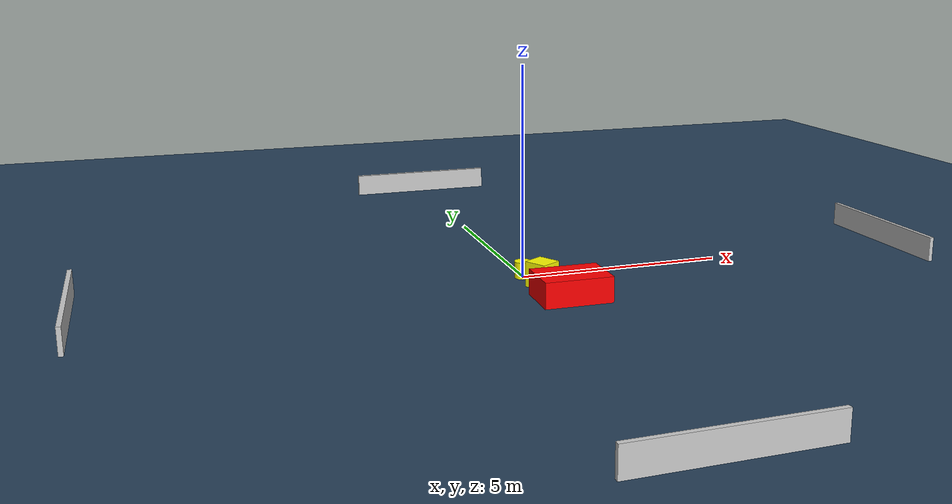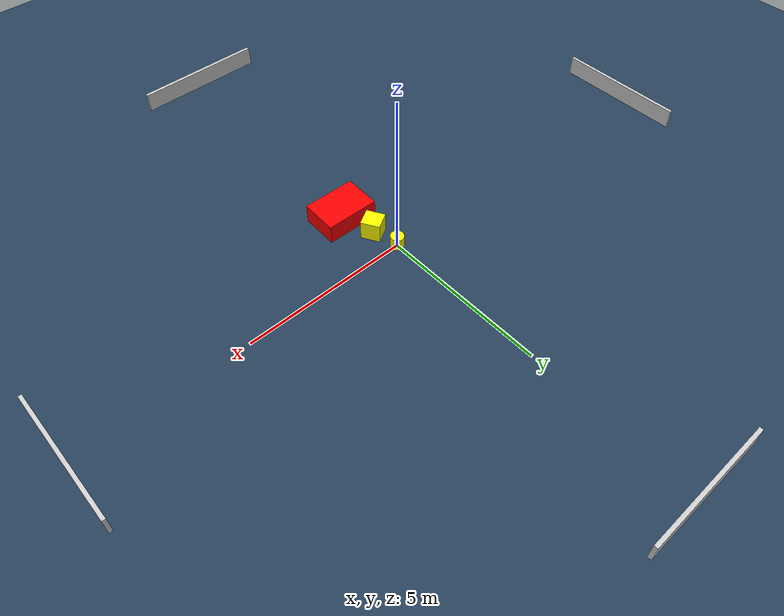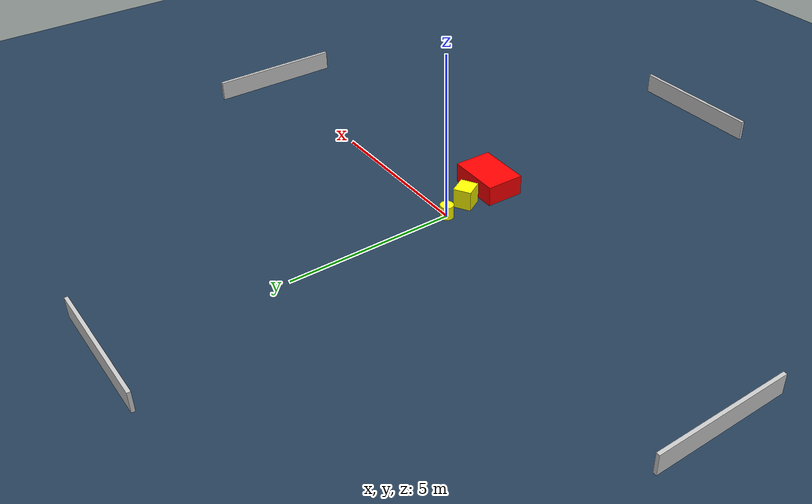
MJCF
<?xml version="1.0" ?>
<mujoco model="generated_environment">
  <option timestep="0.01" integrator="RK4" cone="elliptic"/>
  <default>
    <geom density="1"/>
  </default>
  <asset>
    <texture builtin="gradient" height="3072" name="skybox" rgb1="0.3 0.5 0.7" rgb2="0 0 0" type="skybox" width="512"/>
    <texture builtin="checker" height="300" name="groundplane" rgb1="0.2 0.3 0.4" rgb2="0.1 0.2 0.3" type="2d" width="300"/>
    <material name="groundplane" reflectance="0.2" texrepeat="5 5" texture="groundplane"/>
  </asset>
  <worldbody>
    <light dir="0 0 -1" directional="true" pos="0 0 1.5"/>
    <geom condim="3" friction="0.5 0.005 0.001" material="groundplane" name="floor" pos="0 0 0" size="0 0 0.05" type="plane"/>
    <body name="walls">
      <geom name="wall_1" condim="4" pos="-10.0 0.0 0.3" rgba="0.800000011920929 0.800000011920929 0.800000011920929 1.0" size="0.05 2.0 0.3" type="box"/>
      <geom name="wall_2" condim="4" pos="10.0 0.0 0.3" rgba="0.800000011920929 0.800000011920929 0.800000011920929 1.0" size="0.05 2.0 0.3" type="box"/>
      <geom name="wall_3" condim="4" pos="0.0 -10.0 0.3" rgba="0.800000011920929 0.800000011920929 0.800000011920929 1.0" size="2.0 0.05 0.3" type="box"/>
      <geom name="wall_4" condim="4" pos="0.0 10.0 0.3" rgba="0.800000011920929 0.800000011920929 0.800000011920929 1.0" size="2.0 0.05 0.3" type="box"/>
    </body>
    <body name="robot">
      <joint name="joint_x" type="slide" pos="0 0 0" axis="1 0 0"/>
      <joint name="joint_y" type="slide" pos="0 0 0" axis="0 1 0"/>
      <geom name="robot" type="cylinder" pos="0.0 0.0 0.2" size="0.2 0.2 0.0" mass="5.0" friction="1.0 0.005 0.0001" condim="4" rgba="1.0 1.0 0.0 1.0"/>
    </body>
    <body name="obstacle_1_movable">
      <geom name="obstacle_1_movable" condim="4" pos="0.18999494556928898 -0.8060182227480902 0.3" euler="0 0 120.02238359584005" friction="0.0 0.005 0.001" rgba="1.0 1.0 0.0 1.0" size="0.28087637924229686 0.2643630947347645 0.3" type="box" mass="0.1"/>
      <joint type="free"/>
    </body>
    <body name="obstacle_2_static">
      <geom name="obstacle_2_static" condim="4" pos="0.49032229324736115 -1.8653337304260833 0.3" euler="0 0 88.77041076410202" friction="0.0 0.005 0.001" rgba="1.0 0.0 0.0 1.0" size="0.5611571642463717 0.796255377915998 0.3" type="box"/>
    </body>
  </worldbody>
  <actuator>
    <motor name="actuator_x" joint="joint_x" gear="1" ctrlrange="-1 1"/>
    <motor name="actuator_y" joint="joint_y" gear="1" ctrlrange="-1 1"/>
  </actuator>
</mujoco>
